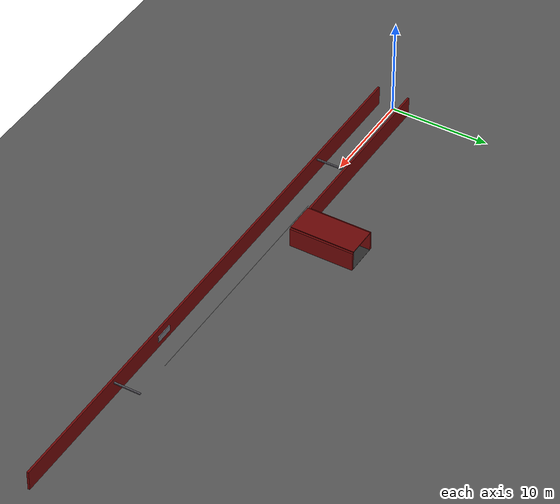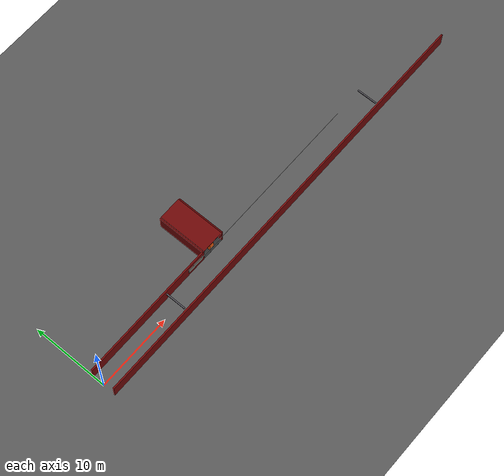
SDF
<sdf version="1.6">
 <world name="connected_branch_corridor_world">
  <include><uri>model://sun</uri></include>
  <model name="large_ground_plane">
   <static>true</static>
   <pose>50 0 -0.01 0 0 0</pose>
   <link name="link">
    <collision name="collision"><geometry><box><size>300 200 0.02</size></box></geometry></collision>
    <visual name="visual">
     <geometry><box><size>300 200 0.02</size></box></geometry>
     <material><ambient>0.35 0.35 0.35 1</ambient><diffuse>0.35 0.35 0.35 1</diffuse></material>
    </visual>
   </link>
  </model>
  <model name="corridor_floor_07">
   <static>true</static>
   <pose>20 4.75 0.01 0 0 0</pose>
   <link name="link">
    <visual name="visual">
     <geometry><box><size>3 6.5 0.02</size></box></geometry>
     <material><ambient>0.11 0.11 0.11 1</ambient><diffuse>0.18 0.18 0.18 1</diffuse></material>
    </visual>
   </link>
  </model>
  <model name="corridor_ceiling_07">
   <static>true</static>
   <pose>20 4.75 2.05 0 0 0</pose>
   <link name="link">
    <collision name="collision"><geometry><box><size>3 6.5 0.1</size></box></geometry></collision>
    <visual name="visual">
     <geometry><box><size>3 6.5 0.1</size></box></geometry>
     <material><ambient>0.25 0.015 0.015 1</ambient><diffuse>0.43 0.025 0.025 1</diffuse></material>
    </visual>
   </link>
  </model>
  <model name="wall_03_south">
   <static>true</static>
   <pose>29.25 -1.6 1 0 0 0</pose>
   <link name="link">
    <collision name="collision"><geometry><box><size>58.5 0.2 2</size></box></geometry></collision>
    <visual name="visual">
     <geometry><box><size>58.5 0.2 2</size></box></geometry>
     <material><ambient>0.25 0.015 0.015 1</ambient><diffuse>0.43 0.025 0.025 1</diffuse></material>
    </visual>
   </link>
  </model>
  <model name="wall_05_north">
   <static>true</static>
   <pose>9.25 1.6 1 0 0 0</pose>
   <link name="link">
    <collision name="collision"><geometry><box><size>18.5 0.2 2</size></box></geometry></collision>
    <visual name="visual">
     <geometry><box><size>18.5 0.2 2</size></box></geometry>
     <material><ambient>0.25 0.015 0.015 1</ambient><diffuse>0.43 0.025 0.025 1</diffuse></material>
    </visual>
   </link>
  </model>
  <model name="wall_10_west">
   <static>true</static>
   <pose>18.4 4.75 1 0 0 0</pose>
   <link name="link">
    <collision name="collision"><geometry><box><size>0.2 6.5 2</size></box></geometry></collision>
    <visual name="visual">
     <geometry><box><size>0.2 6.5 2</size></box></geometry>
     <material><ambient>0.25 0.015 0.015 1</ambient><diffuse>0.43 0.025 0.025 1</diffuse></material>
    </visual>
   </link>
  </model>
  <model name="wall_11_east">
   <static>true</static>
   <pose>21.6 4.75 1 0 0 0</pose>
   <link name="link">
    <collision name="collision"><geometry><box><size>0.2 6.5 2</size></box></geometry></collision>
    <visual name="visual">
     <geometry><box><size>0.2 6.5 2</size></box></geometry>
     <material><ambient>0.25 0.015 0.015 1</ambient><diffuse>0.43 0.025 0.025 1</diffuse></material>
    </visual>
   </link>
  </model>
  <model name="feature_crate_left_branch_01">
   <static>true</static>
   <pose>19.15 3.10 0.18 0 0 0</pose>
   <link name="link">
    <collision name="collision"><geometry><box><size>0.55 0.45 0.36</size></box></geometry></collision>
    <visual name="visual">
     <geometry><box><size>0.55 0.45 0.36</size></box></geometry>
     <material><ambient>0.28 0.24 0.18 1</ambient><diffuse>0.48 0.40 0.30 1</diffuse></material>
    </visual>
   </link>
  </model>
  <model name="feature_low_block_left_branch_02">
   <static>true</static>
   <pose>20.95 6.80 0.15 0 0 0.35</pose>
   <link name="link">
    <collision name="collision"><geometry><box><size>0.70 0.35 0.30</size></box></geometry></collision>
    <visual name="visual">
     <geometry><box><size>0.70 0.35 0.30</size></box></geometry>
     <material><ambient>0.32 0.30 0.28 1</ambient><diffuse>0.46 0.44 0.42 1</diffuse></material>
    </visual>
   </link>
  </model>
  <model name="feature_cable_main_x_01">
   <static>true</static>
   <pose>30.0 1.22 1.82 0 1.5708 0</pose>
   <link name="link">
    <collision name="collision">
     <geometry><cylinder><radius>0.025</radius><length>24.0</length></cylinder></geometry>
    </collision>
    <visual name="visual">
     <geometry><cylinder><radius>0.025</radius><length>24.0</length></cylinder></geometry>
     <material><ambient>0.02 0.02 0.02 1</ambient><diffuse>0.04 0.04 0.04 1</diffuse></material>
    </visual>
   </link>
  </model>
  <model name="feature_cable_left_branch_y_01">
   <static>true</static>
   <pose>18.85 4.80 1.76 1.5708 0 0</pose>
   <link name="link">
    <collision name="collision">
     <geometry><cylinder><radius>0.025</radius><length>6.2</length></cylinder></geometry>
    </collision>
    <visual name="visual">
     <geometry><cylinder><radius>0.025</radius><length>6.2</length></cylinder></geometry>
     <material><ambient>0.03 0.025 0.02 1</ambient><diffuse>0.06 0.05 0.04 1</diffuse></material>
    </visual>
   </link>
  </model>
  <model name="feature_crossbeam_main_01">
   <static>true</static>
   <pose>12 0 1.88 0 0 0</pose>
   <link name="link">
    <collision name="collision"><geometry><box><size>0.16 2.65 0.12</size></box></geometry></collision>
    <visual name="visual">
     <geometry><box><size>0.16 2.65 0.12</size></box></geometry>
     <material><ambient>0.25 0.24 0.26 1</ambient><diffuse>0.38 0.37 0.40 1</diffuse></material>
    </visual>
   </link>
  </model>
  <model name="feature_crossbeam_main_02">
   <static>true</static>
   <pose>46 0 1.88 0 0 0</pose>
   <link name="link">
    <collision name="collision"><geometry><box><size>0.16 2.65 0.12</size></box></geometry></collision>
    <visual name="visual">
     <geometry><box><size>0.16 2.65 0.12</size></box></geometry>
     <material><ambient>0.25 0.24 0.26 1</ambient><diffuse>0.38 0.37 0.40 1</diffuse></material>
    </visual>
   </link>
  </model>
  <model name="feature_crossbeam_left_branch_01">
   <static>true</static>
   <pose>20 4.6 1.88 0 0 0</pose>
   <link name="link">
    <collision name="collision"><geometry><box><size>2.65 0.16 0.12</size></box></geometry></collision>
    <visual name="visual">
     <geometry><box><size>2.65 0.16 0.12</size></box></geometry>
     <material><ambient>0.25 0.24 0.26 1</ambient><diffuse>0.38 0.37 0.40 1</diffuse></material>
    </visual>
   </link>
  </model>
  <model name="feature_wall_panel_main_north_01">
   <static>true</static>
   <pose>17.0 1.46 1.05 0 0 0</pose>
   <link name="link">
    <collision name="collision"><geometry><box><size>2.4 0.08 0.70</size></box></geometry></collision>
    <visual name="visual">
     <geometry><box><size>2.4 0.08 0.70</size></box></geometry>
     <material><ambient>0.34 0.32 0.30 1</ambient><diffuse>0.48 0.46 0.43 1</diffuse></material>
    </visual>
   </link>
  </model>
  <model name="feature_wall_panel_main_south_01">
   <static>true</static>
   <pose>38.0 -1.46 0.95 0 0 0</pose>
   <link name="link">
    <collision name="collision"><geometry><box><size>1.8 0.08 0.60</size></box></geometry></collision>
    <visual name="visual">
     <geometry><box><size>1.8 0.08 0.60</size></box></geometry>
     <material><ambient>0.30 0.30 0.32 1</ambient><diffuse>0.44 0.44 0.47 1</diffuse></material>
    </visual>
   </link>
  </model>
  <model name="experiment_center_block">
   <static>true</static>
   <pose>20 2 0.7 0 0 0</pose>
   <link name="link">
    <collision name="collision"><geometry><box><size>0.6 0.6 1.4</size></box></geometry></collision>
    <visual name="visual">
     <geometry><box><size>0.6 0.6 1.4</size></box></geometry>
     <material><ambient>0.9 0.35 0.05 1</ambient><diffuse>0.9 0.35 0.05 1</diffuse></material>
    </visual>
   </link>
  </model>
 </world>
</sdf>
